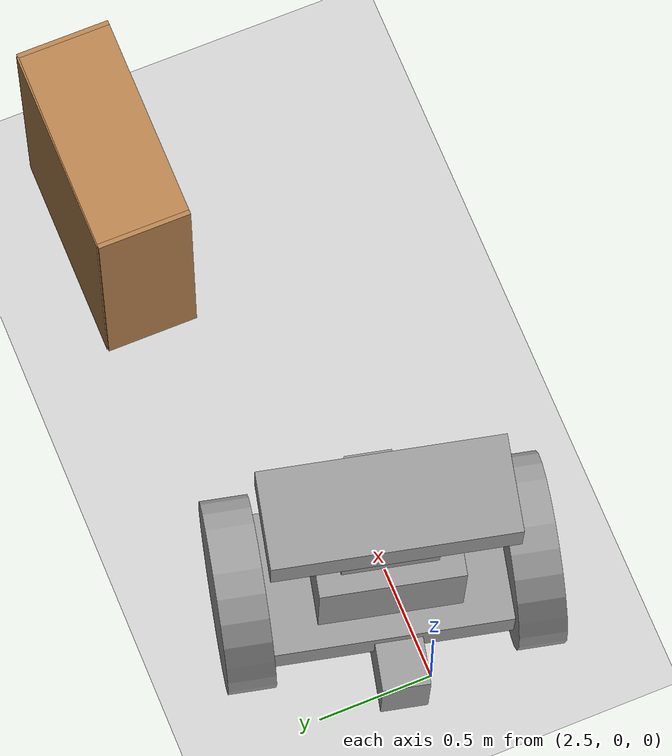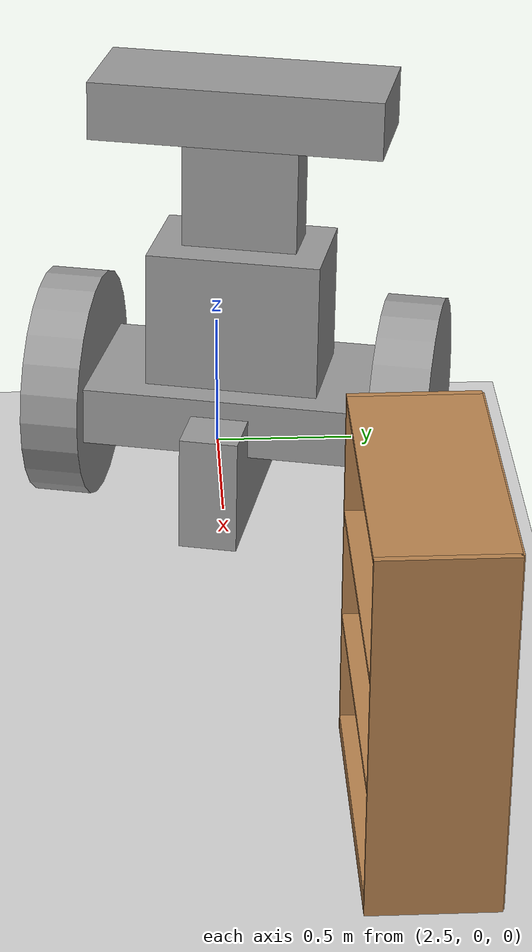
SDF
<sdf version="1.6">
 <world name="default">
  <model name="ground_plane">
   <static>1</static>
   <link name="link">
    <collision name="collision">
     <geometry><plane><normal>0 0 1</normal><size>100 100</size></plane></geometry>
     <surface>
      <contact><collide_bitmask>65535</collide_bitmask></contact>
      <friction><ode><mu>100</mu><mu2>50</mu2></ode></friction>
     </surface>
    </collision>
    <visual name="visual">
     <cast_shadows>0</cast_shadows>
     <geometry><plane><normal>0 0 1</normal><size>100 100</size></plane></geometry>
     <material>
      <script><uri>file://media/materials/scripts/gazebo.material</uri><name>Gazebo/Grey</name></script>
     </material>
    </visual>
   </link>
  </model>
  <model name="robo1">
   <link name="link_0">
    <pose>0.431648 -0.223766 0.4 0 -0 0</pose>
    <inertial>
     <mass>1</mass>
     <inertia>
      <ixx>0.166667</ixx>
      <ixy>0</ixy>
      <ixz>0</ixz>
      <iyy>0.166667</iyy>
      <iyz>0</iyz>
      <izz>0.166667</izz>
     </inertia>
    </inertial>
    <visual name="visual">
     <geometry><box><size>0.6 1 0.2</size></box></geometry>
     <material>
      <lighting>1</lighting>
      <script><uri>file://media/materials/scripts/gazebo.material</uri><name>Gazebo/Grey</name></script>
      <shader type="pixel"><normal_map>__default__</normal_map></shader>
      <ambient>0.3 0.3 0.3 1</ambient>
      <diffuse>0.7 0.7 0.7 1</diffuse>
      <specular>0.01 0.01 0.01 1</specular>
      <emissive>0 0 0 1</emissive>
     </material>
    </visual>
    <collision name="collision">
     <geometry><box><size>0.6 1 0.2</size></box></geometry>
     <surface>
      <friction>
       <ode><mu>1</mu><mu2>1</mu2><fdir1>0 0 0</fdir1><slip1>0</slip1><slip2>0</slip2></ode>
       <torsional>
        <coefficient>1</coefficient>
        <patch_radius>0</patch_radius>
        <surface_radius>0</surface_radius>
        <use_patch_radius>1</use_patch_radius>
        <ode><slip>0</slip></ode>
       </torsional>
      </friction>
      <bounce><restitution_coefficient>0</restitution_coefficient><threshold>1e+06</threshold></bounce>
      <contact>
       <collide_without_contact>0</collide_without_contact>
       <collide_without_contact_bitmask>1</collide_without_contact_bitmask>
       <collide_bitmask>1</collide_bitmask>
       <ode>
        <soft_cfm>0</soft_cfm>
        <soft_erp>0.2</soft_erp>
        <kp>1e+13</kp>
        <kd>1</kd>
        <max_vel>0.01</max_vel>
        <min_depth>0</min_depth>
       </ode>
       <bullet>
        <split_impulse>1</split_impulse>
        <split_impulse_penetration_threshold>-0.01</split_impulse_penetration_threshold>
        <soft_cfm>0</soft_cfm>
        <soft_erp>0.2</soft_erp>
        <kp>1e+13</kp>
        <kd>1</kd>
       </bullet>
      </contact>
     </surface>
    </collision>
   </link>
   <link name="link_10">
    <pose>0.431648 -0.223766 1.47714 0 -0 0</pose>
    <inertial>
     <mass>1</mass>
     <inertia>
      <ixx>0.166667</ixx>
      <ixy>0</ixy>
      <ixz>0</ixz>
      <iyy>0.166667</iyy>
      <iyz>0</iyz>
      <izz>0.166667</izz>
     </inertia>
    </inertial>
    <visual name="visual">
     <geometry><box><size>0.4 1 0.2</size></box></geometry>
     <material>
      <lighting>1</lighting>
      <script><uri>file://media/materials/scripts/gazebo.material</uri><name>Gazebo/Grey</name></script>
      <shader type="pixel"><normal_map>__default__</normal_map></shader>
      <ambient>0.3 0.3 0.3 1</ambient>
      <diffuse>0.7 0.7 0.7 1</diffuse>
      <specular>0.01 0.01 0.01 1</specular>
      <emissive>0 0 0 1</emissive>
     </material>
    </visual>
    <collision name="collision">
     <geometry><box><size>0.4 1 0.2</size></box></geometry>
     <surface>
      <friction>
       <ode><mu>1</mu><mu2>1</mu2><fdir1>0 0 0</fdir1><slip1>0</slip1><slip2>0</slip2></ode>
       <torsional>
        <coefficient>1</coefficient>
        <patch_radius>0</patch_radius>
        <surface_radius>0</surface_radius>
        <use_patch_radius>1</use_patch_radius>
        <ode><slip>0</slip></ode>
       </torsional>
      </friction>
      <bounce><restitution_coefficient>0</restitution_coefficient><threshold>1e+06</threshold></bounce>
      <contact>
       <collide_without_contact>0</collide_without_contact>
       <collide_without_contact_bitmask>1</collide_without_contact_bitmask>
       <collide_bitmask>1</collide_bitmask>
       <ode>
        <soft_cfm>0</soft_cfm>
        <soft_erp>0.2</soft_erp>
        <kp>1e+13</kp>
        <kd>1</kd>
        <max_vel>0.01</max_vel>
        <min_depth>0</min_depth>
       </ode>
       <bullet>
        <split_impulse>1</split_impulse>
        <split_impulse_penetration_threshold>-0.01</split_impulse_penetration_threshold>
        <soft_cfm>0</soft_cfm>
        <soft_erp>0.2</soft_erp>
        <kp>1e+13</kp>
        <kd>1</kd>
       </bullet>
      </contact>
     </surface>
    </collision>
   </link>
   <link name="link_2">
    <pose>0.431648 -0.823804 0.4 1.5707 -0 0</pose>
    <inertial>
     <mass>1</mass>
     <inertia><ixx>0.145833</ixx><ixy>0</ixy><ixz>0</ixz><iyy>0.145833</iyy><iyz>0</iyz><izz>0.125</izz></inertia>
    </inertial>
    <visual name="visual">
     <geometry><cylinder><radius>0.4</radius><length>0.2</length></cylinder></geometry>
     <material>
      <lighting>1</lighting>
      <script><uri>file://media/materials/scripts/gazebo.material</uri><name>Gazebo/Grey</name></script>
      <shader type="pixel"><normal_map>__default__</normal_map></shader>
      <ambient>0.3 0.3 0.3 1</ambient>
      <diffuse>0.7 0.7 0.7 1</diffuse>
      <specular>0.01 0.01 0.01 1</specular>
      <emissive>0 0 0 1</emissive>
     </material>
    </visual>
    <collision name="collision">
     <geometry><cylinder><radius>0.4</radius><length>0.2</length></cylinder></geometry>
     <surface>
      <friction>
       <ode><mu>1</mu><mu2>1</mu2><fdir1>0 0 0</fdir1><slip1>0</slip1><slip2>0</slip2></ode>
       <torsional>
        <coefficient>1</coefficient>
        <patch_radius>0</patch_radius>
        <surface_radius>0</surface_radius>
        <use_patch_radius>1</use_patch_radius>
        <ode><slip>0</slip></ode>
       </torsional>
      </friction>
      <bounce><restitution_coefficient>0</restitution_coefficient><threshold>1e+06</threshold></bounce>
      <contact>
       <collide_without_contact>0</collide_without_contact>
       <collide_without_contact_bitmask>1</collide_without_contact_bitmask>
       <collide_bitmask>1</collide_bitmask>
       <ode>
        <soft_cfm>0</soft_cfm>
        <soft_erp>0.2</soft_erp>
        <kp>1e+13</kp>
        <kd>1</kd>
        <max_vel>0.01</max_vel>
        <min_depth>0</min_depth>
       </ode>
       <bullet>
        <split_impulse>1</split_impulse>
        <split_impulse_penetration_threshold>-0.01</split_impulse_penetration_threshold>
        <soft_cfm>0</soft_cfm>
        <soft_erp>0.2</soft_erp>
        <kp>1e+13</kp>
        <kd>1</kd>
       </bullet>
      </contact>
     </surface>
    </collision>
   </link>
   <link name="link_2_clone">
    <pose>0.431648 0.376273 0.4 1.5707 -0 0</pose>
    <inertial>
     <mass>1</mass>
     <inertia><ixx>0.145833</ixx><ixy>0</ixy><ixz>0</ixz><iyy>0.145833</iyy><iyz>0</iyz><izz>0.125</izz></inertia>
    </inertial>
    <visual name="visual">
     <geometry><cylinder><radius>0.4</radius><length>0.2</length></cylinder></geometry>
     <material>
      <lighting>1</lighting>
      <script><uri>file://media/materials/scripts/gazebo.material</uri><name>Gazebo/Grey</name></script>
      <shader type="pixel"><normal_map>__default__</normal_map></shader>
      <ambient>0.3 0.3 0.3 1</ambient>
      <diffuse>0.7 0.7 0.7 1</diffuse>
      <specular>0.01 0.01 0.01 1</specular>
      <emissive>0 0 0 1</emissive>
     </material>
    </visual>
    <collision name="collision">
     <geometry><cylinder><radius>0.4</radius><length>0.2</length></cylinder></geometry>
     <surface>
      <friction>
       <ode><mu>1</mu><mu2>1</mu2><fdir1>0 0 0</fdir1><slip1>0</slip1><slip2>0</slip2></ode>
       <torsional>
        <coefficient>1</coefficient>
        <patch_radius>0</patch_radius>
        <surface_radius>0</surface_radius>
        <use_patch_radius>1</use_patch_radius>
        <ode><slip>0</slip></ode>
       </torsional>
      </friction>
      <bounce><restitution_coefficient>0</restitution_coefficient><threshold>1e+06</threshold></bounce>
      <contact>
       <collide_without_contact>0</collide_without_contact>
       <collide_without_contact_bitmask>1</collide_without_contact_bitmask>
       <collide_bitmask>1</collide_bitmask>
       <ode>
        <soft_cfm>0</soft_cfm>
        <soft_erp>0.2</soft_erp>
        <kp>1e+13</kp>
        <kd>1</kd>
        <max_vel>0.01</max_vel>
        <min_depth>0</min_depth>
       </ode>
       <bullet>
        <split_impulse>1</split_impulse>
        <split_impulse_penetration_threshold>-0.01</split_impulse_penetration_threshold>
        <soft_cfm>0</soft_cfm>
        <soft_erp>0.2</soft_erp>
        <kp>1e+13</kp>
        <kd>1</kd>
       </bullet>
      </contact>
     </surface>
    </collision>
   </link>
   <link name="link_4">
    <pose>0.431648 -0.243766 0.237143 0 -0 0</pose>
    <inertial>
     <mass>1</mass>
     <inertia>
      <ixx>0.166667</ixx>
      <ixy>0</ixy>
      <ixz>0</ixz>
      <iyy>0.166667</iyy>
      <iyz>0</iyz>
      <izz>0.166667</izz>
     </inertia>
    </inertial>
    <visual name="visual">
     <geometry><box><size>1 0.2 0.4</size></box></geometry>
     <material>
      <lighting>1</lighting>
      <script><uri>file://media/materials/scripts/gazebo.material</uri><name>Gazebo/Grey</name></script>
      <shader type="pixel"><normal_map>__default__</normal_map></shader>
      <ambient>0.3 0.3 0.3 1</ambient>
      <diffuse>0.7 0.7 0.7 1</diffuse>
      <specular>0.01 0.01 0.01 1</specular>
      <emissive>0 0 0 1</emissive>
     </material>
    </visual>
    <collision name="collision">
     <geometry><box><size>1 0.2 0.4</size></box></geometry>
     <surface>
      <friction>
       <ode><mu>1</mu><mu2>1</mu2><fdir1>0 0 0</fdir1><slip1>0</slip1><slip2>0</slip2></ode>
       <torsional>
        <coefficient>1</coefficient>
        <patch_radius>0</patch_radius>
        <surface_radius>0</surface_radius>
        <use_patch_radius>1</use_patch_radius>
        <ode><slip>0</slip></ode>
       </torsional>
      </friction>
      <bounce><restitution_coefficient>0</restitution_coefficient><threshold>1e+06</threshold></bounce>
      <contact>
       <collide_without_contact>0</collide_without_contact>
       <collide_without_contact_bitmask>1</collide_without_contact_bitmask>
       <collide_bitmask>1</collide_bitmask>
       <ode>
        <soft_cfm>0</soft_cfm>
        <soft_erp>0.2</soft_erp>
        <kp>1e+13</kp>
        <kd>1</kd>
        <max_vel>0.01</max_vel>
        <min_depth>0</min_depth>
       </ode>
       <bullet>
        <split_impulse>1</split_impulse>
        <split_impulse_penetration_threshold>-0.01</split_impulse_penetration_threshold>
        <soft_cfm>0</soft_cfm>
        <soft_erp>0.2</soft_erp>
        <kp>1e+13</kp>
        <kd>1</kd>
       </bullet>
      </contact>
     </surface>
    </collision>
   </link>
   <link name="link_6">
    <pose>0.431648 -0.223766 0.677143 0 -0 0</pose>
    <inertial>
     <mass>1</mass>
     <inertia>
      <ixx>0.166667</ixx>
      <ixy>0</ixy>
      <ixz>0</ixz>
      <iyy>0.166667</iyy>
      <iyz>0</iyz>
      <izz>0.166667</izz>
     </inertia>
    </inertial>
    <visual name="visual">
     <geometry><box><size>0.4 0.6 0.6</size></box></geometry>
     <material>
      <lighting>1</lighting>
      <script><uri>file://media/materials/scripts/gazebo.material</uri><name>Gazebo/Grey</name></script>
      <shader type="pixel"><normal_map>__default__</normal_map></shader>
      <ambient>0.3 0.3 0.3 1</ambient>
      <diffuse>0.7 0.7 0.7 1</diffuse>
      <specular>0.01 0.01 0.01 1</specular>
      <emissive>0 0 0 1</emissive>
     </material>
    </visual>
    <collision name="collision">
     <geometry><box><size>0.4 0.6 0.6</size></box></geometry>
     <surface>
      <friction>
       <ode><mu>1</mu><mu2>1</mu2><fdir1>0 0 0</fdir1><slip1>0</slip1><slip2>0</slip2></ode>
       <torsional>
        <coefficient>1</coefficient>
        <patch_radius>0</patch_radius>
        <surface_radius>0</surface_radius>
        <use_patch_radius>1</use_patch_radius>
        <ode><slip>0</slip></ode>
       </torsional>
      </friction>
      <bounce><restitution_coefficient>0</restitution_coefficient><threshold>1e+06</threshold></bounce>
      <contact>
       <collide_without_contact>0</collide_without_contact>
       <collide_without_contact_bitmask>1</collide_without_contact_bitmask>
       <collide_bitmask>1</collide_bitmask>
       <ode>
        <soft_cfm>0</soft_cfm>
        <soft_erp>0.2</soft_erp>
        <kp>1e+13</kp>
        <kd>1</kd>
        <max_vel>0.01</max_vel>
        <min_depth>0</min_depth>
       </ode>
       <bullet>
        <split_impulse>1</split_impulse>
        <split_impulse_penetration_threshold>-0.01</split_impulse_penetration_threshold>
        <soft_cfm>0</soft_cfm>
        <soft_erp>0.2</soft_erp>
        <kp>1e+13</kp>
        <kd>1</kd>
       </bullet>
      </contact>
     </surface>
    </collision>
   </link>
   <link name="link_8">
    <pose>0.411648 -0.223766 1.17714 0 -0 0</pose>
    <inertial>
     <mass>1</mass>
     <inertia>
      <ixx>0.166667</ixx>
      <ixy>0</ixy>
      <ixz>0</ixz>
      <iyy>0.166667</iyy>
      <iyz>0</iyz>
      <izz>0.166667</izz>
     </inertia>
    </inertial>
    <visual name="visual">
     <geometry><box><size>0.2 0.4 0.4</size></box></geometry>
     <material>
      <lighting>1</lighting>
      <script><uri>file://media/materials/scripts/gazebo.material</uri><name>Gazebo/Grey</name></script>
      <shader type="pixel"><normal_map>__default__</normal_map></shader>
      <ambient>0.3 0.3 0.3 1</ambient>
      <diffuse>0.7 0.7 0.7 1</diffuse>
      <specular>0.01 0.01 0.01 1</specular>
      <emissive>0 0 0 1</emissive>
     </material>
    </visual>
    <collision name="collision">
     <geometry><box><size>0.2 0.4 0.4</size></box></geometry>
     <surface>
      <friction>
       <ode><mu>1</mu><mu2>1</mu2><fdir1>0 0 0</fdir1><slip1>0</slip1><slip2>0</slip2></ode>
       <torsional>
        <coefficient>1</coefficient>
        <patch_radius>0</patch_radius>
        <surface_radius>0</surface_radius>
        <use_patch_radius>1</use_patch_radius>
        <ode><slip>0</slip></ode>
       </torsional>
      </friction>
      <bounce><restitution_coefficient>0</restitution_coefficient><threshold>1e+06</threshold></bounce>
      <contact>
       <collide_without_contact>0</collide_without_contact>
       <collide_without_contact_bitmask>1</collide_without_contact_bitmask>
       <collide_bitmask>1</collide_bitmask>
       <ode>
        <soft_cfm>0</soft_cfm>
        <soft_erp>0.2</soft_erp>
        <kp>1e+13</kp>
        <kd>1</kd>
        <max_vel>0.01</max_vel>
        <min_depth>0</min_depth>
       </ode>
       <bullet>
        <split_impulse>1</split_impulse>
        <split_impulse_penetration_threshold>-0.01</split_impulse_penetration_threshold>
        <soft_cfm>0</soft_cfm>
        <soft_erp>0.2</soft_erp>
        <kp>1e+13</kp>
        <kd>1</kd>
       </bullet>
      </contact>
     </surface>
    </collision>
   </link>
   <joint name="link_0_JOINT_0_0" type="fixed">
    <parent>link_0</parent>
    <child>link_4</child>
    <physics>
     <ode><limit><cfm>0</cfm><erp>0.2</erp></limit><suspension><cfm>0</cfm><erp>0.2</erp></suspension></ode>
    </physics>
   </joint>
   <joint name="link_0_JOINT_0" type="revolute">
    <parent>link_0</parent>
    <child>link_2</child>
    <axis>
     <xyz>0 0 1</xyz>
     <use_parent_model_frame>0</use_parent_model_frame>
     <limit>
      <lower>-1.79769e+308</lower>
      <upper>1.79769e+308</upper>
      <effort>-1</effort>
      <velocity>-1</velocity>
     </limit>
     <dynamics>
      <spring_reference>0</spring_reference>
      <spring_stiffness>0</spring_stiffness>
      <damping>0</damping>
      <friction>0</friction>
     </dynamics>
    </axis>
    <physics>
     <ode><limit><cfm>0</cfm><erp>0.2</erp></limit><suspension><cfm>0</cfm><erp>0.2</erp></suspension></ode>
    </physics>
   </joint>
   <joint name="link_0_JOINT_1" type="revolute">
    <parent>link_0</parent>
    <child>link_2_clone</child>
    <axis>
     <xyz>0 0 1</xyz>
     <use_parent_model_frame>0</use_parent_model_frame>
     <limit>
      <lower>-1.79769e+308</lower>
      <upper>1.79769e+308</upper>
      <effort>-1</effort>
      <velocity>-1</velocity>
     </limit>
     <dynamics>
      <spring_reference>0</spring_reference>
      <spring_stiffness>0</spring_stiffness>
      <damping>0</damping>
      <friction>0</friction>
     </dynamics>
    </axis>
    <physics>
     <ode><limit><cfm>0</cfm><erp>0.2</erp></limit><suspension><cfm>0</cfm><erp>0.2</erp></suspension></ode>
    </physics>
   </joint>
   <joint name="link_0_JOINT_2" type="fixed">
    <parent>link_0</parent>
    <child>link_4</child>
    <physics>
     <ode><limit><cfm>0</cfm><erp>0.2</erp></limit><suspension><cfm>0</cfm><erp>0.2</erp></suspension></ode>
    </physics>
   </joint>
   <joint name="link_0_JOINT_3" type="fixed">
    <parent>link_0</parent>
    <child>link_6</child>
    <physics>
     <ode><limit><cfm>0</cfm><erp>0.2</erp></limit><suspension><cfm>0</cfm><erp>0.2</erp></suspension></ode>
    </physics>
   </joint>
   <joint name="link_6_JOINT_4" type="fixed">
    <parent>link_6</parent>
    <child>link_8</child>
    <physics>
     <ode><limit><cfm>0</cfm><erp>0.2</erp></limit><suspension><cfm>0</cfm><erp>0.2</erp></suspension></ode>
    </physics>
   </joint>
   <joint name="link_8_JOINT_5" type="fixed">
    <parent>link_8</parent>
    <child>link_10</child>
    <physics>
     <ode><limit><cfm>0</cfm><erp>0.2</erp></limit><suspension><cfm>0</cfm><erp>0.2</erp></suspension></ode>
    </physics>
   </joint>
   <static>0</static>
   <pose>2.53889 0.377529 -0.031809 0 -0.076498 -0.22771</pose>
  </model>
  <model name="bookshelf_0">
   <static>1</static>
   <link name="link">
    <inertial><mass>1</mass></inertial>
    <collision name="back">
     <pose>0 0.005 0.6 0 -0 0</pose>
     <geometry><box><size>0.9 0.01 1.2</size></box></geometry>
    </collision>
    <visual name="visual1">
     <pose>0 0.005 0.6 0 -0 0</pose>
     <geometry><box><size>0.9 0.01 1.2</size></box></geometry>
     <material>
      <script><uri>file://media/materials/scripts/gazebo.material</uri><name>Gazebo/Wood</name></script>
     </material>
    </visual>
    <collision name="left_side">
     <pose>0.45 -0.195 0.6 0 -0 0</pose>
     <geometry><box><size>0.02 0.4 1.2</size></box></geometry>
    </collision>
    <visual name="visual2">
     <pose>0.45 -0.195 0.6 0 -0 0</pose>
     <geometry><box><size>0.02 0.4 1.2</size></box></geometry>
     <material>
      <script><uri>file://media/materials/scripts/gazebo.material</uri><name>Gazebo/Wood</name></script>
     </material>
    </visual>
    <collision name="right_side">
     <pose>-0.45 -0.195 0.6 0 -0 0</pose>
     <geometry><box><size>0.02 0.4 1.2</size></box></geometry>
    </collision>
    <visual name="visual3">
     <pose>-0.45 -0.195 0.6 0 -0 0</pose>
     <geometry><box><size>0.02 0.4 1.2</size></box></geometry>
     <material>
      <script><uri>file://media/materials/scripts/gazebo.material</uri><name>Gazebo/Wood</name></script>
     </material>
    </visual>
    <collision name="bottom">
     <pose>0 -0.195 0.03 0 -0 0</pose>
     <geometry><box><size>0.88 0.4 0.06</size></box></geometry>
    </collision>
    <visual name="visual4">
     <pose>0 -0.195 0.03 0 -0 0</pose>
     <geometry><box><size>0.88 0.4 0.06</size></box></geometry>
     <material>
      <script><uri>file://media/materials/scripts/gazebo.material</uri><name>Gazebo/Wood</name></script>
     </material>
    </visual>
    <collision name="top">
     <pose>0 -0.195 1.19 0 -0 0</pose>
     <geometry><box><size>0.88 0.4 0.02</size></box></geometry>
    </collision>
    <visual name="visual5">
     <pose>0 -0.195 1.19 0 -0 0</pose>
     <geometry><box><size>0.88 0.4 0.02</size></box></geometry>
     <material>
      <script><uri>file://media/materials/scripts/gazebo.material</uri><name>Gazebo/Wood</name></script>
     </material>
    </visual>
    <collision name="low_shelf">
     <pose>0 -0.195 0.43 0 -0 0</pose>
     <geometry><box><size>0.88 0.4 0.02</size></box></geometry>
    </collision>
    <visual name="visual6">
     <pose>0 -0.195 0.43 0 -0 0</pose>
     <geometry><box><size>0.88 0.4 0.02</size></box></geometry>
     <material>
      <script><uri>file://media/materials/scripts/gazebo.material</uri><name>Gazebo/Wood</name></script>
     </material>
    </visual>
    <collision name="high_shelf">
     <pose>0 -0.195 0.8 0 -0 0</pose>
     <geometry><box><size>0.88 0.4 0.02</size></box></geometry>
    </collision>
    <visual name="visual7">
     <pose>0 -0.195 0.8 0 -0 0</pose>
     <geometry><box><size>0.88 0.4 0.02</size></box></geometry>
     <material>
      <script><uri>file://media/materials/scripts/gazebo.material</uri><name>Gazebo/Wood</name></script>
     </material>
    </visual>
   </link>
   <pose>4.80077 0.707169 0 0 -0 0</pose>
  </model>
 </world>
</sdf>
